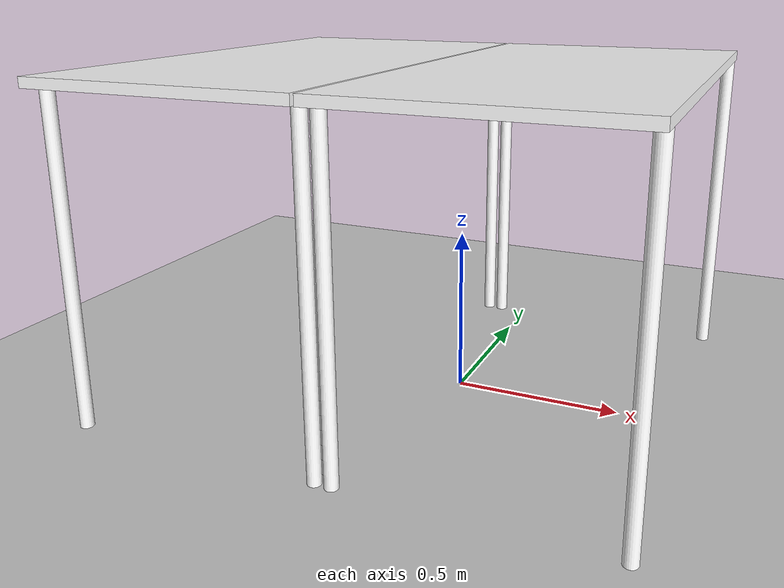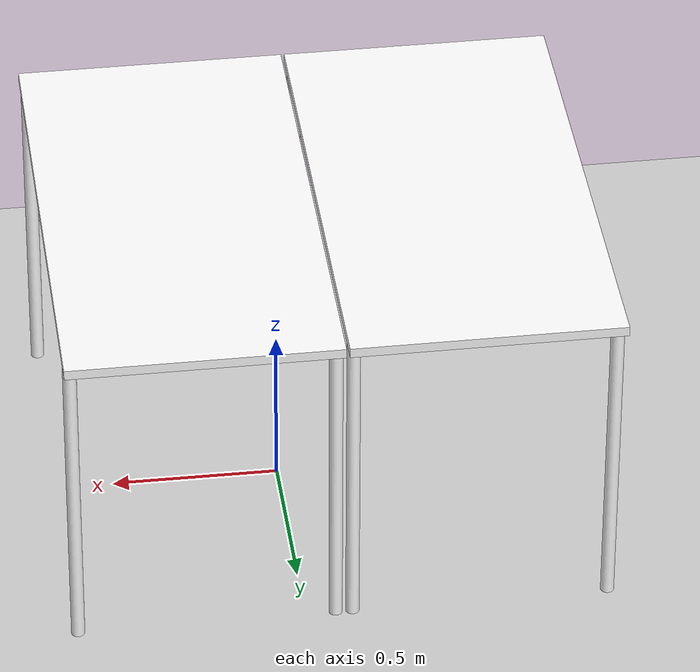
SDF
<sdf version="1.9">
 <world name="arm_and_table">
  <physics name="1ms" type="ignored">
   <max_step_size>0.001</max_step_size>
   <real_time_factor>1</real_time_factor>
   <real_time_update_rate>1000</real_time_update_rate>
  </physics>
  <plugin name="ignition::gazebo::systems::Physics" filename="ignition-gazebo-physics-system"/>
  <plugin name="ignition::gazebo::systems::UserCommands" filename="ignition-gazebo-user-commands-system"/>
  <plugin name="ignition::gazebo::systems::SceneBroadcaster" filename="ignition-gazebo-scene-broadcaster-system"/>
  <plugin name="ignition::gazebo::systems::Sensors" filename="ignition-gazebo-sensors-system">
   <render_engine>ogre2</render_engine>
  </plugin>
  <scene><shadows>0</shadows></scene>
  <gravity>0 0 -9.8</gravity>
  <magnetic_field>6e-06 2.3e-05 -4.2e-05</magnetic_field>
  <atmosphere type="adiabatic"/>
  <scene><ambient>0.4 0.4 0.4 1</ambient><background>0.7 0.7 0.7 1</background><shadows>true</shadows></scene>
  <model name="ground_plane">
   <static>true</static>
   <link name="link">
    <collision name="collision">
     <geometry><plane><normal>0 0 1</normal><size>100 100</size></plane></geometry>
    </collision>
    <visual name="visual">
     <geometry><plane><normal>0 0 1</normal><size>100 100</size></plane></geometry>
     <material>
      <ambient>0.8 0.8 0.8 1</ambient>
      <diffuse>0.8 0.8 0.8 1</diffuse>
      <specular>0.8 0.8 0.8 1</specular>
     </material>
    </visual>
    <inertial>
     <mass>1</mass>
     <inertia><ixx>1</ixx><ixy>0</ixy><ixz>0</ixz><iyy>1</iyy><iyz>0</iyz><izz>1</izz></inertia>
    </inertial>
   </link>
  </model>
  <model name="table1">
   <static>true</static>
   <include><uri>file:///home/mr_robot/devel_ws/install/rom_ur_sim/share/rom_ur_sim/worlds/table/</uri></include>
   <pose>0.29 0 0 0 0 1.5708</pose>
  </model>
  <model name="table2">
   <static>true</static>
   <include><uri>file:///home/mr_robot/devel_ws/install/rom_ur_sim/share/rom_ur_sim/worlds/table/</uri></include>
   <pose>-0.52 0 0 0 0 1.5708</pose>
  </model>
  <light name="sun" type="directional">
   <pose>0 0 10 0 -0 0</pose>
   <intensity>1</intensity>
   <direction>-0.5 0.1 -0.9</direction>
   <diffuse>0.8 0.8 0.8 1</diffuse>
   <specular>0.2 0.2 0.2 1</specular>
   <attenuation>
    <range>1000</range>
    <linear>0.01</linear>
    <constant>0.90000000000000002</constant>
    <quadratic>0.001</quadratic>
   </attenuation>
   <spot><inner_angle>0</inner_angle><outer_angle>0</outer_angle><falloff>0</falloff></spot>
  </light>
 </world>
</sdf>

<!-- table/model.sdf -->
<sdf version="1.5">
  <model name="table">
    <static>true</static>
    <link name="link">
      <collision name="surface">
        <pose>0 0 1.0 0 0 0</pose>
        <geometry>
          <box>
            <size>1.5 0.8 0.03</size>
          </box>
        </geometry>
        <surface>
          <friction>
            <ode>
              <mu>0.6</mu>
              <mu2>0.6</mu2>
            </ode>
          </friction>
        </surface>
      </collision>
      <visual name="visual1">
        <pose>0 0 1.0 0 0 0</pose>
        <geometry>
          <box>
            <size>1.5 0.8 0.03</size>
          </box>
        </geometry>
        <material>
          <ambient>1 1 1 1</ambient>  <!-- White color -->
          <diffuse>1 1 1 1</diffuse>  <!-- White color -->
          <specular>1 1 1 1</specular>  <!-- White color -->
        </material>
      </visual>
      <collision name="front_left_leg">
        <pose>0.68 0.38 0.5 0 0 0</pose>
        <geometry>
          <cylinder>
            <radius>0.02</radius>
            <length>1.0</length>
          </cylinder>
        </geometry>
      </collision>
      <visual name="front_left_leg">
        <pose>0.68 0.38 0.5 0 0 0</pose>
        <geometry>
          <cylinder>
            <radius>0.02</radius>
            <length>1.0</length>
          </cylinder>
        </geometry>
        <material>
          <ambient>1 1 1 1</ambient>  <!-- White color -->
          <diffuse>1 1 1 1</diffuse>  <!-- White color -->
          <specular>1 1 1 1</specular>  <!-- White color -->
        </material>
      </visual>
      <collision name="front_right_leg">
        <pose>0.68 -0.38 0.5 0 0 0</pose>
        <geometry>
          <cylinder>
            <radius>0.02</radius>
            <length>1.0</length>
          </cylinder>
        </geometry>
      </collision>
      <visual name="front_right_leg">
        <pose>0.68 -0.38 0.5 0 0 0</pose>
        <geometry>
          <cylinder>
            <radius>0.02</radius>
            <length>1.0</length>
          </cylinder>
        </geometry>
        <material>
          <ambient>1 1 1 1</ambient>  <!-- White color -->
          <diffuse>1 1 1 1</diffuse>  <!-- White color -->
          <specular>1 1 1 1</specular>  <!-- White color -->
        </material>
      </visual>
      <collision name="back_right_leg">
        <pose>-0.68 -0.38 0.5 0 0 0</pose>
        <geometry>
          <cylinder>
            <radius>0.02</radius>
            <length>1.0</length>
          </cylinder>
        </geometry>
      </collision>
      <visual name="back_right_leg">
        <pose>-0.68 -0.38 0.5 0 0 0</pose>
        <geometry>
          <cylinder>
            <radius>0.02</radius>
            <length>1.0</length>
          </cylinder>
        </geometry>
        <material>
          <ambient>1 1 1 1</ambient>  <!-- White color -->
          <diffuse>1 1 1 1</diffuse>  <!-- White color -->
          <specular>1 1 1 1</specular>  <!-- White color -->
        </material>
      </visual>
      <collision name="back_left_leg">
        <pose>-0.68 0.38 0.5 0 0 0</pose>
        <geometry>
          <cylinder>
            <radius>0.02</radius>
            <length>1.0</length>
          </cylinder>
        </geometry>
      </collision>
      <visual name="back_left_leg">
        <pose>-0.68 0.38 0.5 0 0 0</pose>
        <geometry>
          <cylinder>
            <radius>0.02</radius>
            <length>1.0</length>
          </cylinder>
        </geometry>
        <material>
          <ambient>1 1 1 1</ambient>  <!-- White color -->
          <diffuse>1 1 1 1</diffuse>  <!-- White color -->
          <specular>1 1 1 1</specular>  <!-- White color -->
        </material>
      </visual>
    </link>
  </model>
</sdf>
